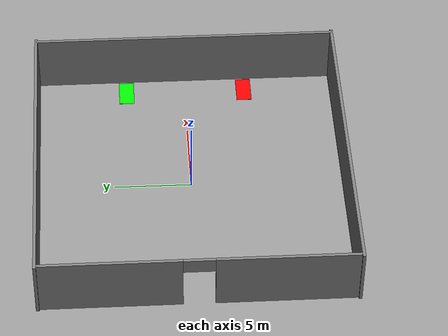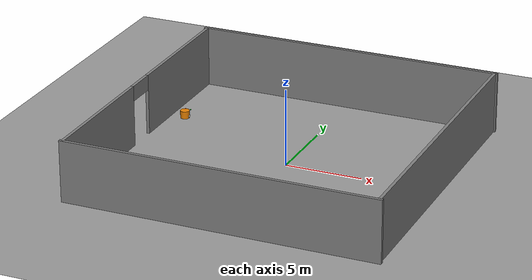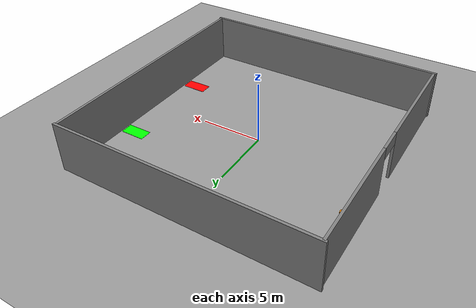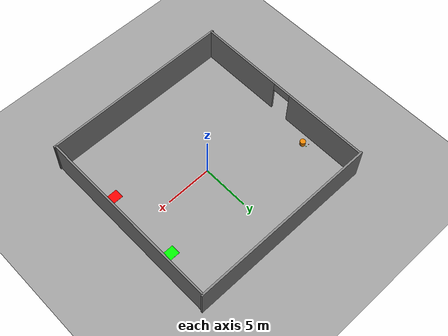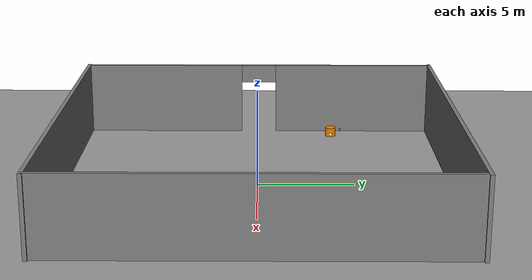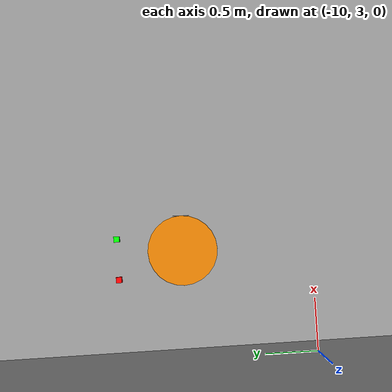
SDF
<sdf version="1.7">
 <world name="airport_baggage_world">
  <include><uri>https://fuel.gazebosim.org/1.0/OpenRobotics/models/Sun</uri></include>
  <model name="Ground_Plane">
   <static>true</static>
   <link name="link">
    <collision name="collision">
     <geometry><plane><normal>0 0 1</normal><size>50 50</size></plane></geometry>
     <surface><friction><ode><mu>100</mu><mu2>50</mu2></ode></friction></surface>
    </collision>
    <visual name="visual">
     <geometry><plane><normal>0 0 1</normal><size>50 50</size></plane></geometry>
     <material><ambient>0.4 0.4 0.4 1</ambient><diffuse>0.6 0.6 0.6 1</diffuse></material>
    </visual>
   </link>
  </model>
  <model name="room_walls">
   <static>true</static>
   <link name="structure">
    <collision name="wall_north_col">
     <pose>0 10 2 0 0 0</pose>
     <geometry><box><size>20.4 0.2 4</size></box></geometry>
    </collision>
    <visual name="wall_north_vis">
     <pose>0 10 2 0 0 0</pose>
     <geometry><box><size>20.4 0.2 4</size></box></geometry>
     <material>
      <ambient>0.5 0.5 0.5 1</ambient>
      <diffuse>0.5 0.5 0.5 1</diffuse>
      <specular>0.1 0.1 0.1 1</specular>
     </material>
    </visual>
    <collision name="wall_south_col">
     <pose>0 -10 2 0 0 0</pose>
     <geometry><box><size>20.4 0.2 4</size></box></geometry>
    </collision>
    <visual name="wall_south_vis">
     <pose>0 -10 2 0 0 0</pose>
     <geometry><box><size>20.4 0.2 4</size></box></geometry>
     <material>
      <ambient>0.5 0.5 0.5 1</ambient>
      <diffuse>0.5 0.5 0.5 1</diffuse>
      <specular>0.1 0.1 0.1 1</specular>
     </material>
    </visual>
    <collision name="wall_east_col">
     <pose>10 0 2 0 0 0</pose>
     <geometry><box><size>0.2 20 4</size></box></geometry>
    </collision>
    <visual name="wall_east_vis">
     <pose>10 0 2 0 0 0</pose>
     <geometry><box><size>0.2 20 4</size></box></geometry>
     <material>
      <ambient>0.5 0.5 0.5 1</ambient>
      <diffuse>0.5 0.5 0.5 1</diffuse>
      <specular>0.1 0.1 0.1 1</specular>
     </material>
    </visual>
    <collision name="wall_west_south_col">
     <pose>-10 -5.5 2 0 0 0</pose>
     <geometry><box><size>0.2 9 4</size></box></geometry>
    </collision>
    <visual name="wall_west_south_vis">
     <pose>-10 -5.5 2 0 0 0</pose>
     <geometry><box><size>0.2 9 4</size></box></geometry>
     <material>
      <ambient>0.5 0.5 0.5 1</ambient>
      <diffuse>0.5 0.5 0.5 1</diffuse>
      <specular>0.1 0.1 0.1 1</specular>
     </material>
    </visual>
    <collision name="wall_west_north_col">
     <pose>-10 5.5 2 0 0 0</pose>
     <geometry><box><size>0.2 9 4</size></box></geometry>
    </collision>
    <visual name="wall_west_north_vis">
     <pose>-10 5.5 2 0 0 0</pose>
     <geometry><box><size>0.2 9 4</size></box></geometry>
     <material>
      <ambient>0.5 0.5 0.5 1</ambient>
      <diffuse>0.5 0.5 0.5 1</diffuse>
      <specular>0.1 0.1 0.1 1</specular>
     </material>
    </visual>
    <collision name="wall_west_lintel_col">
     <pose>-10 0 3.5 0 0 0</pose>
     <geometry><box><size>0.2 2 1</size></box></geometry>
    </collision>
    <visual name="wall_west_lintel_vis">
     <pose>-10 0 3.5 0 0 0</pose>
     <geometry><box><size>0.2 2 1</size></box></geometry>
     <material>
      <ambient>0.5 0.5 0.5 1</ambient>
      <diffuse>0.5 0.5 0.5 1</diffuse>
      <specular>0.1 0.1 0.1 1</specular>
     </material>
    </visual>
   </link>
  </model>
  <model name="Kuka_Workstation">
   <pose>-8.95 4.22 0.25 0 0 0</pose>
   <static>true</static>
   <link name="link">
    <collision name="collision">
     <geometry><cylinder><radius>0.3</radius><length>0.5</length></cylinder></geometry>
    </collision>
    <visual name="visual">
     <geometry><cylinder><radius>0.3</radius><length>0.5</length></cylinder></geometry>
     <material><ambient>0.9 0.5 0.0 1</ambient><diffuse>0.9 0.5 0.0 1</diffuse></material>
    </visual>
   </link>
  </model>
  <model name="Red_Cube">
   <pose>-9.18 4.80 0.34 0 0 0</pose>
   <static>false</static>
   <link name="link_1">
    <inertial>
     <mass>0.1</mass>
     <inertia><ixx>0.0001</ixx><ixy>0</ixy><ixz>0</ixz><iyy>0.0001</iyy><iyz>0</iyz><izz>0.0001</izz></inertia>
    </inertial>
    <collision name="collision"><geometry><box><size>0.05 0.05 0.05</size></box></geometry></collision>
    <visual name="visual">
     <geometry><box><size>0.05 0.05 0.05</size></box></geometry>
     <material><ambient>1 0 0 1</ambient><diffuse>1 0 0 1</diffuse></material>
    </visual>
   </link>
  </model>
  <model name="Green_Cube">
   <pose>-8.82 4.80 0.34 0 0 0</pose>
   <static>false</static>
   <link name="link_2">
    <inertial>
     <mass>0.1</mass>
     <inertia><ixx>0.0001</ixx><ixy>0</ixy><ixz>0</ixz><iyy>0.0001</iyy><iyz>0</iyz><izz>0.0001</izz></inertia>
    </inertial>
    <collision name="collision"><geometry><box><size>0.05 0.05 0.05</size></box></geometry></collision>
    <visual name="visual">
     <geometry><box><size>0.05 0.05 0.05</size></box></geometry>
     <material><ambient>0 1 0 1</ambient><diffuse>0 1 0 1</diffuse></material>
    </visual>
   </link>
  </model>
  <model name="Red_Area">
   <pose>8.81 -4.01 0.01 0 0 -1.57</pose>
   <static>true</static>
   <link name="link">
    <visual name="visual">
     <geometry><box><size>1 2 0.01</size></box></geometry>
     <material><ambient>1 0 0 1</ambient><diffuse>1 0 0 1</diffuse></material>
    </visual>
   </link>
  </model>
  <model name="Green_Area">
   <pose>8.81 4.01 0.01 0 0 -1.57</pose>
   <static>true</static>
   <link name="link">
    <visual name="visual">
     <geometry><box><size>1 2 0.01</size></box></geometry>
     <material><ambient>0 1 0 1</ambient><diffuse>0 1 0 1</diffuse></material>
    </visual>
   </link>
  </model>
  <include>
   <uri>model://aruco_tag</uri>
   <name>aruco_tag</name>
   <pose>-8.64 4.22 0.14 0.0 -1.57 3.10</pose>
  </include>
 </world>
</sdf>

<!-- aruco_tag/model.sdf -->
<sdf version="1.9">
  <model name="aruco_tag">
    <static>true</static>
    <link name="base">
      <visual name="tag_visual">
        <geometry>
          <box>
            <size>0.15 0.15 0.001</size>
          </box>
        </geometry>
        <material>
          <ambient>1 1 1 1</ambient>
          <diffuse>1 1 1 1</diffuse>
          <pbr>
            <metal>
              <albedo_map>model://aruco_tag/aruco-1.png</albedo_map>
            </metal>
          </pbr>
        </material>
      </visual>
      <collision name="tag_collision">
        <geometry>
          <box>
            <size>0.1 0.1 0.001</size>
          </box>
        </geometry>
      </collision>
    </link>
  </model>
</sdf>
